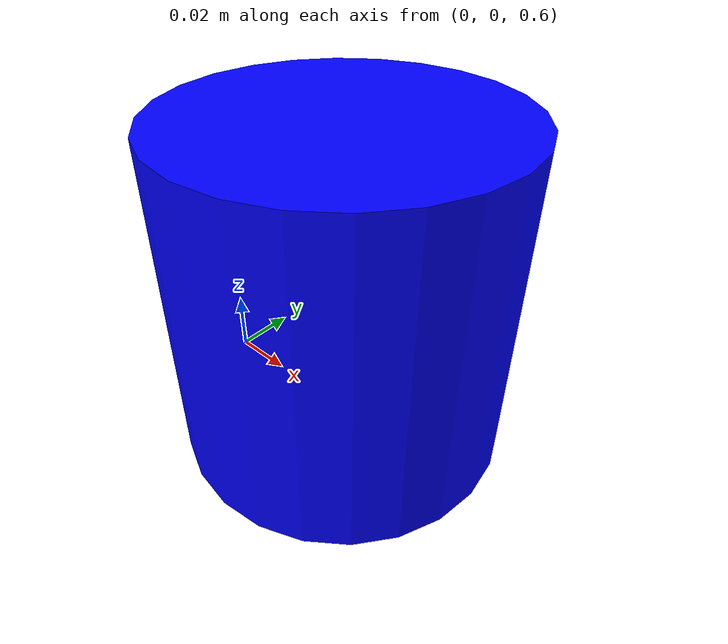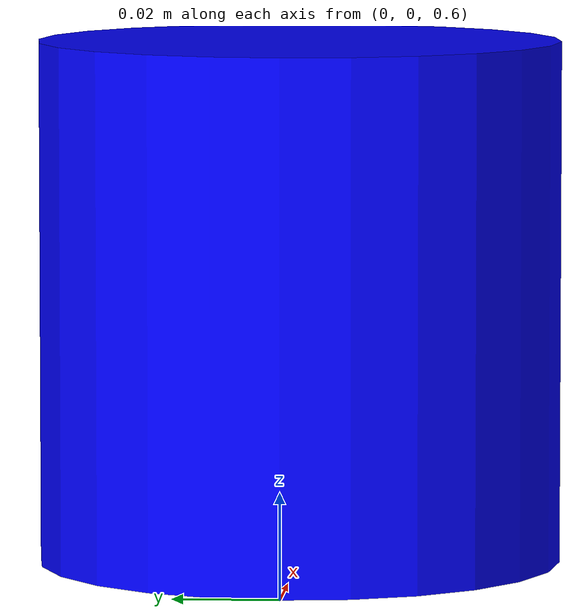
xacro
<?xml version="1.0" ?>
<robot xmlns:xacro="http://www.ros.org/wiki/xacro" name="rover">

  <material name="silver">
    <color rgba="0.700 0.700 0.700 1.000"/>
  </material>

  <!-- Base Link -->
  <link name="base_link">
    <inertial>
      <origin xyz="0 0 0.0" rpy="0 0 0"/>
      <mass value="4.240593873008682"/>
      <inertia ixx="0.10869" iyy="0.129499" izz="0.054658" ixy="0.0" iyz="0.00125" ixz="0.000239"/>
    </inertial>
  </link>

  <!-- Wheel Links -->
  <link name="front_left_wheel">
    <inertial>
      <origin xyz="0 0 0" rpy="0 0 0"/>
      <mass value="0.0"/>
      <inertia ixx="0.0" iyy="0.0" izz="0.0" ixy="0.0" iyz="0.0" ixz="0.0"/>
    </inertial>
  </link>

  <link name="front_right_wheel">
    <inertial>
      <origin xyz="0 0 0" rpy="0 0 0"/>
      <mass value="0.0"/>
      <inertia ixx="0.0" iyy="0.0" izz="0.0" ixy="0.0" iyz="0.0" ixz="0.0"/>
    </inertial>
  </link>

  <link name="rear_left_wheel">
    <inertial>
      <origin xyz="0 0 0" rpy="0 0 0"/>
      <mass value="0.0"/>
      <inertia ixx="0.0" iyy="0.0" izz="0.0" ixy="0.0" iyz="0.0" ixz="0.0"/>
    </inertial>
  </link>

  <link name="rear_right_wheel">
    <inertial>
      <origin xyz="0 0 0" rpy="0 0 0"/>
      <mass value="0.0"/>
      <inertia ixx="0.0" iyy="0.0" izz="0.0" ixy="0.0" iyz="0.0" ixz="0.0"/>
    </inertial>
  </link>

  <!-- Fixed Joints -->
  <joint name="joint_front_left_wheel" type="fixed">
    <origin xyz="0.22 0.1875 -0.110" rpy="0 0 0"/>
    <parent link="base_link"/>
    <child link="front_left_wheel"/>
  </joint>

  <joint name="joint_front_right_wheel" type="fixed">
    <origin xyz="0.22 -0.1875 -0.110" rpy="0 0 0"/>
    <parent link="base_link"/>
    <child link="front_right_wheel"/>
  </joint>

  <joint name="joint_rear_left_wheel" type="fixed">
    <origin xyz="-0.22 0.1875 -0.110" rpy="0 0 0"/>
    <parent link="base_link"/>
    <child link="rear_left_wheel"/>
  </joint>

  <joint name="joint_rear_right_wheel" type="fixed">
    <origin xyz="-0.22 -0.1875 -0.110" rpy="0 0 0"/>
    <parent link="base_link"/>
    <child link="rear_right_wheel"/>
  </joint>
  <link name="livox_frame">
    <visual>
      <geometry>
        <cylinder length="0.1" radius="0.05"/>
      </geometry>
      <material name="blue">
        <color rgba="0.0 0.0 1.0 1.0"/>
      </material>
    </visual>
  </link>
    <link name="gyro_link"/>
    <joint name="imu_joint" type="fixed">
      <origin xyz="0.0 0 0.0" rpy="0 0 0" />
      <parent link="base_link" />
      <child link="gyro_link" />
    </joint>
  <joint name="base_to_livox" type="fixed">
    <parent link="base_link"/>
    <child link="livox_frame"/>
    <origin xyz="0.05 0 0.65" rpy="3.141592 0 0"/>
  </joint>
</robot>
